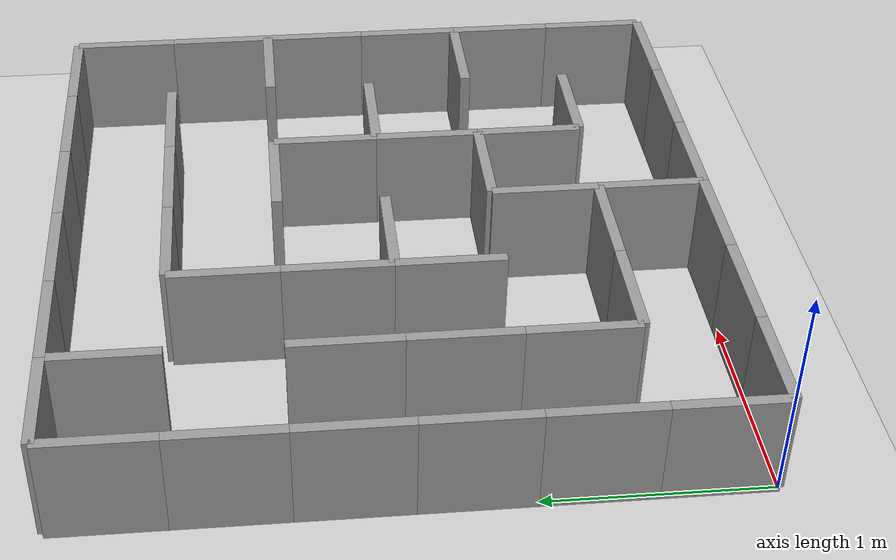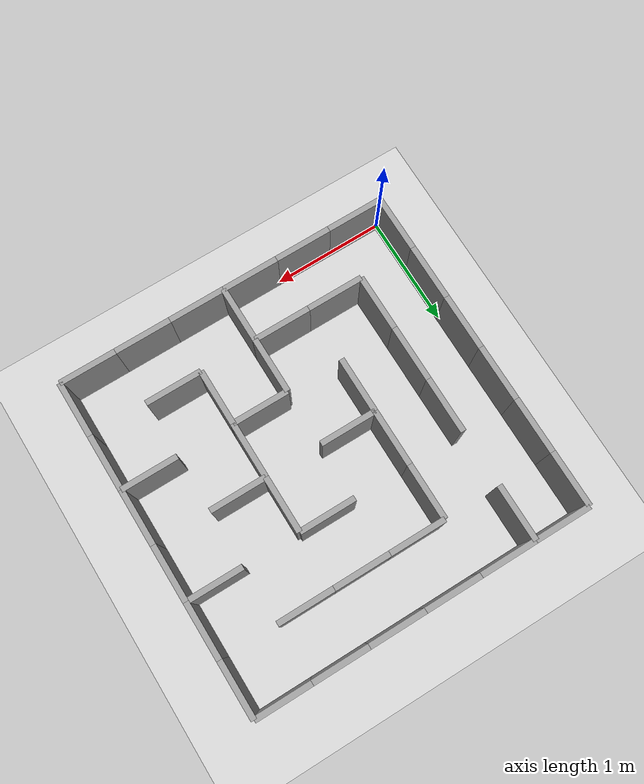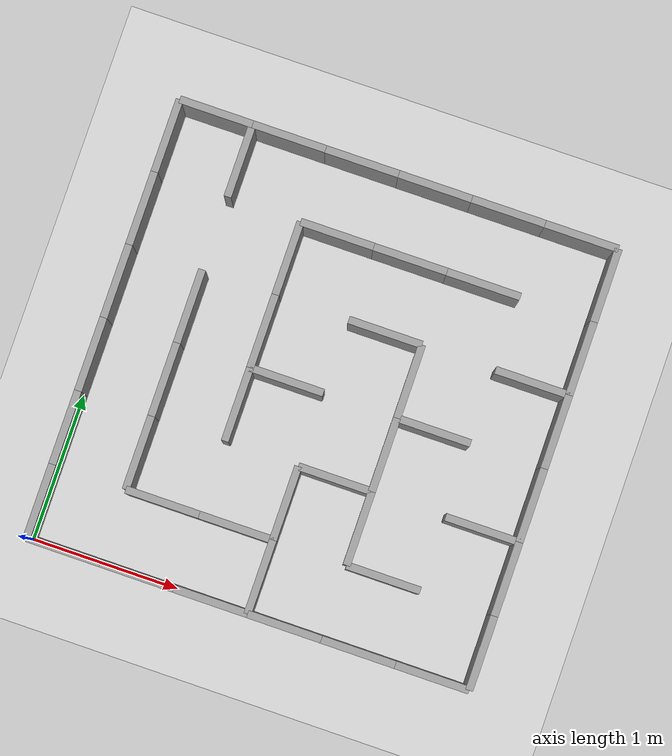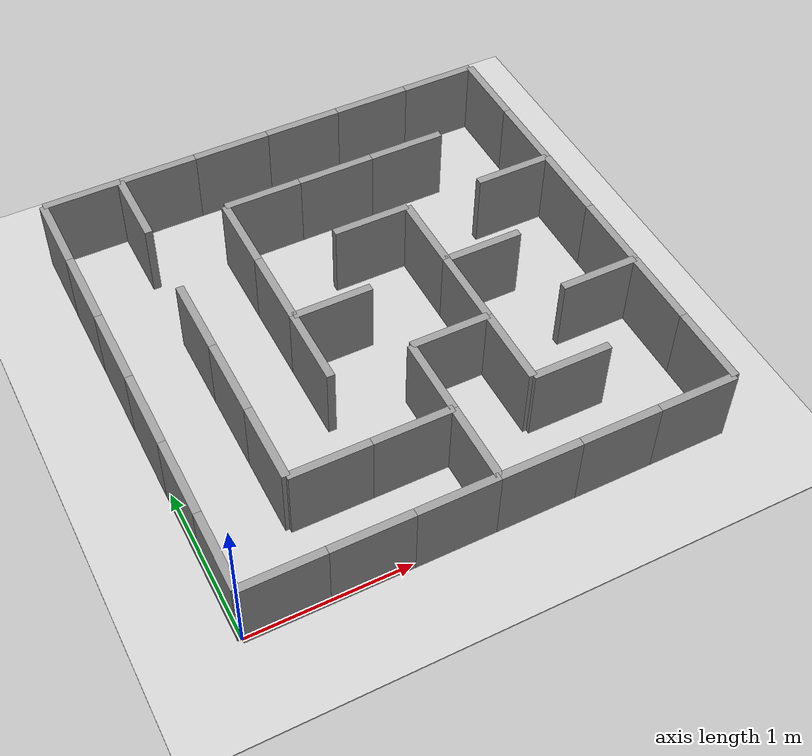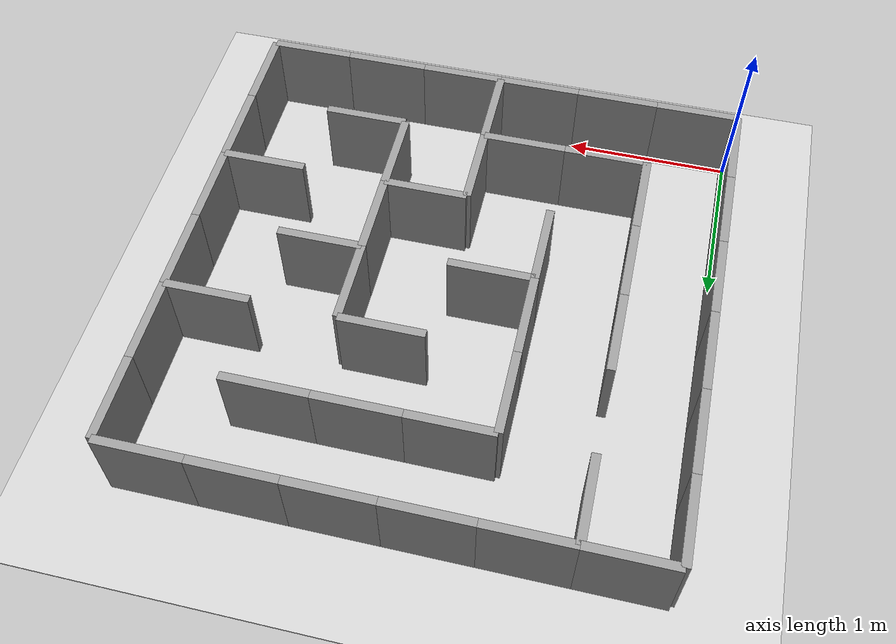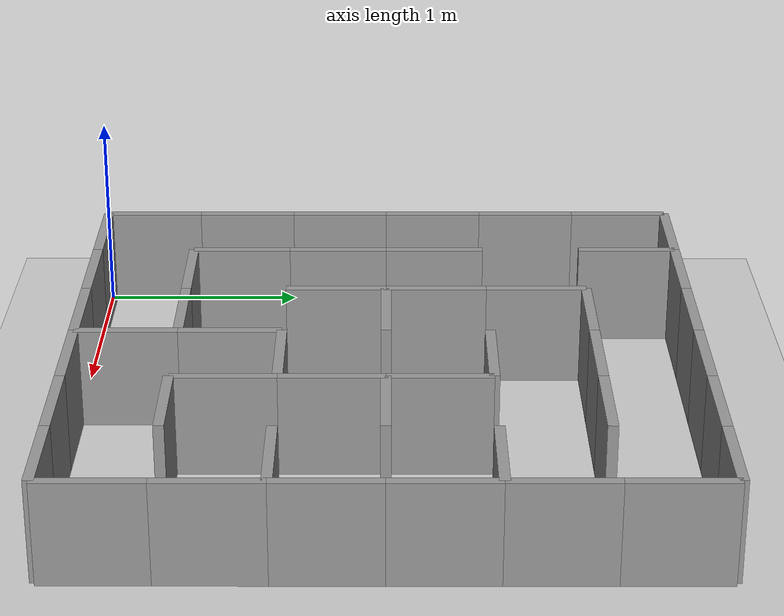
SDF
<?xml version="1.0" ?>
<sdf version="1.7">
  <world name="maze_world">

    <physics type="ode">
      <real_time_update_rate>1000.0</real_time_update_rate>
      <max_step_size>0.001</max_step_size>
      <real_time_factor>1</real_time_factor>
      <ode>
        <solver>
          <type>quick</type>
          <iters>150</iters>
          <precon_iters>0</precon_iters>
          <sor>1.400000</sor>
          <use_dynamic_moi_rescaling>1</use_dynamic_moi_rescaling>
        </solver>
        <constraints>
          <cfm>0.00001</cfm>
          <erp>0.2</erp>
          <contact_max_correcting_vel>2000.000000</contact_max_correcting_vel>
          <contact_surface_layer>0.01000</contact_surface_layer>
        </constraints>
      </ode>
    </physics>

    <!-- core Gazebo plugins (keep as in official world) -->
    <plugin filename="gz-sim-physics-system" name="gz::sim::systems::Physics" />
    <plugin filename="gz-sim-user-commands-system" name="gz::sim::systems::UserCommands" />
    <plugin filename="gz-sim-scene-broadcaster-system" name="gz::sim::systems::SceneBroadcaster" />
    <plugin filename="gz-sim-sensors-system" name="gz::sim::systems::Sensors">
      <render_engine>ogre2</render_engine>
    </plugin>
    <plugin filename="gz-sim-imu-system" name="gz::sim::systems::Imu" />

    <!-- Embedded ground: large thin static box whose top surface is at z=0 -->
    <model name="ground_plane_custom">
      <static>true</static>
      <link name="ground_link">
        <pose>0 0 0 0 0 0</pose>
        <collision name="ground_collision">
          <geometry>
            <!-- big plane approximated by a thin box (100m x 100m x 0.01m) -->
            <box>
              <size>100.0 100.0 0.01</size>
            </box>
          </geometry>
        </collision>
        <visual name="ground_visual">
          <geometry>
            <box>
              <size>100.0 100.0 0.01</size>
            </box>
          </geometry>
          <material>
            <ambient>0.8 0.8 0.8 1</ambient>
            <diffuse>0.8 0.8 0.8 1</diffuse>
          </material>
        </visual>
      </link>
      <!-- put the thin box so its top is at z=0 (box thickness 0.01 -> center at -0.005) -->
      <pose>0 0 -0.005 0 0 0</pose>
    </model>

    <!-- Embedded directional light (sun) -->
    <light name="sun" type="directional">
      <cast_shadows>true</cast_shadows>
      <pose>0 0 10 0 0 0</pose>
      <direction>-0.5 0.5 -1</direction>
      <diffuse>1 1 1 1</diffuse>
      <specular>0.2 0.2 0.2 1</specular>
      <attenuation>
        <range>1000</range>
        <constant>0.0</constant>
        <linear>0.0</linear>
        <quadratic>0.0</quadratic>
      </attenuation>
    </light>

<model name="wall_v_r0_c0">
  <static>true</static>
  <link name="link">
    <pose>0 0 0 0 0 0</pose>
    <collision name="collision">
      <geometry>
        <box>
          <size>0.050100 0.500100 0.500000</size>
        </box>
      </geometry>
    </collision>
    <visual name="visual">
      <geometry>
        <box>
          <size>0.050100 0.500100 0.500000</size>
        </box>
      </geometry>
      <material>
        <ambient>0.6 0.6 0.6 1</ambient>
        <diffuse>0.6 0.6 0.6 1</diffuse>
      </material>
    </visual>
  </link>
  <!-- model pose sets box center; half_z ensures bottom rests on z=0 -->
  <pose>0.000000 0.250000 0.250000 0 0 0</pose>
</model>

<model name="wall_v_r0_c3">
  <static>true</static>
  <link name="link">
    <pose>0 0 0 0 0 0</pose>
    <collision name="collision">
      <geometry>
        <box>
          <size>0.050100 0.500100 0.500000</size>
        </box>
      </geometry>
    </collision>
    <visual name="visual">
      <geometry>
        <box>
          <size>0.050100 0.500100 0.500000</size>
        </box>
      </geometry>
      <material>
        <ambient>0.6 0.6 0.6 1</ambient>
        <diffuse>0.6 0.6 0.6 1</diffuse>
      </material>
    </visual>
  </link>
  <!-- model pose sets box center; half_z ensures bottom rests on z=0 -->
  <pose>1.500000 0.250000 0.250000 0 0 0</pose>
</model>

<model name="wall_v_r0_c6">
  <static>true</static>
  <link name="link">
    <pose>0 0 0 0 0 0</pose>
    <collision name="collision">
      <geometry>
        <box>
          <size>0.050100 0.500100 0.500000</size>
        </box>
      </geometry>
    </collision>
    <visual name="visual">
      <geometry>
        <box>
          <size>0.050100 0.500100 0.500000</size>
        </box>
      </geometry>
      <material>
        <ambient>0.6 0.6 0.6 1</ambient>
        <diffuse>0.6 0.6 0.6 1</diffuse>
      </material>
    </visual>
  </link>
  <!-- model pose sets box center; half_z ensures bottom rests on z=0 -->
  <pose>3.000000 0.250000 0.250000 0 0 0</pose>
</model>

<model name="wall_v_r1_c0">
  <static>true</static>
  <link name="link">
    <pose>0 0 0 0 0 0</pose>
    <collision name="collision">
      <geometry>
        <box>
          <size>0.050100 0.500100 0.500000</size>
        </box>
      </geometry>
    </collision>
    <visual name="visual">
      <geometry>
        <box>
          <size>0.050100 0.500100 0.500000</size>
        </box>
      </geometry>
      <material>
        <ambient>0.6 0.6 0.6 1</ambient>
        <diffuse>0.6 0.6 0.6 1</diffuse>
      </material>
    </visual>
  </link>
  <!-- model pose sets box center; half_z ensures bottom rests on z=0 -->
  <pose>0.000000 0.750000 0.250000 0 0 0</pose>
</model>

<model name="wall_v_r1_c1">
  <static>true</static>
  <link name="link">
    <pose>0 0 0 0 0 0</pose>
    <collision name="collision">
      <geometry>
        <box>
          <size>0.050100 0.500100 0.500000</size>
        </box>
      </geometry>
    </collision>
    <visual name="visual">
      <geometry>
        <box>
          <size>0.050100 0.500100 0.500000</size>
        </box>
      </geometry>
      <material>
        <ambient>0.6 0.6 0.6 1</ambient>
        <diffuse>0.6 0.6 0.6 1</diffuse>
      </material>
    </visual>
  </link>
  <!-- model pose sets box center; half_z ensures bottom rests on z=0 -->
  <pose>0.500000 0.750000 0.250000 0 0 0</pose>
</model>

<model name="wall_v_r1_c3">
  <static>true</static>
  <link name="link">
    <pose>0 0 0 0 0 0</pose>
    <collision name="collision">
      <geometry>
        <box>
          <size>0.050100 0.500100 0.500000</size>
        </box>
      </geometry>
    </collision>
    <visual name="visual">
      <geometry>
        <box>
          <size>0.050100 0.500100 0.500000</size>
        </box>
      </geometry>
      <material>
        <ambient>0.6 0.6 0.6 1</ambient>
        <diffuse>0.6 0.6 0.6 1</diffuse>
      </material>
    </visual>
  </link>
  <!-- model pose sets box center; half_z ensures bottom rests on z=0 -->
  <pose>1.500000 0.750000 0.250000 0 0 0</pose>
</model>

<model name="wall_v_r1_c4">
  <static>true</static>
  <link name="link">
    <pose>0 0 0 0 0 0</pose>
    <collision name="collision">
      <geometry>
        <box>
          <size>0.050100 0.500100 0.500000</size>
        </box>
      </geometry>
    </collision>
    <visual name="visual">
      <geometry>
        <box>
          <size>0.050100 0.500100 0.500000</size>
        </box>
      </geometry>
      <material>
        <ambient>0.6 0.6 0.6 1</ambient>
        <diffuse>0.6 0.6 0.6 1</diffuse>
      </material>
    </visual>
  </link>
  <!-- model pose sets box center; half_z ensures bottom rests on z=0 -->
  <pose>2.000000 0.750000 0.250000 0 0 0</pose>
</model>

<model name="wall_v_r1_c6">
  <static>true</static>
  <link name="link">
    <pose>0 0 0 0 0 0</pose>
    <collision name="collision">
      <geometry>
        <box>
          <size>0.050100 0.500100 0.500000</size>
        </box>
      </geometry>
    </collision>
    <visual name="visual">
      <geometry>
        <box>
          <size>0.050100 0.500100 0.500000</size>
        </box>
      </geometry>
      <material>
        <ambient>0.6 0.6 0.6 1</ambient>
        <diffuse>0.6 0.6 0.6 1</diffuse>
      </material>
    </visual>
  </link>
  <!-- model pose sets box center; half_z ensures bottom rests on z=0 -->
  <pose>3.000000 0.750000 0.250000 0 0 0</pose>
</model>

<model name="wall_v_r2_c0">
  <static>true</static>
  <link name="link">
    <pose>0 0 0 0 0 0</pose>
    <collision name="collision">
      <geometry>
        <box>
          <size>0.050100 0.500100 0.500000</size>
        </box>
      </geometry>
    </collision>
    <visual name="visual">
      <geometry>
        <box>
          <size>0.050100 0.500100 0.500000</size>
        </box>
      </geometry>
      <material>
        <ambient>0.6 0.6 0.6 1</ambient>
        <diffuse>0.6 0.6 0.6 1</diffuse>
      </material>
    </visual>
  </link>
  <!-- model pose sets box center; half_z ensures bottom rests on z=0 -->
  <pose>0.000000 1.250000 0.250000 0 0 0</pose>
</model>

<model name="wall_v_r2_c1">
  <static>true</static>
  <link name="link">
    <pose>0 0 0 0 0 0</pose>
    <collision name="collision">
      <geometry>
        <box>
          <size>0.050100 0.500100 0.500000</size>
        </box>
      </geometry>
    </collision>
    <visual name="visual">
      <geometry>
        <box>
          <size>0.050100 0.500100 0.500000</size>
        </box>
      </geometry>
      <material>
        <ambient>0.6 0.6 0.6 1</ambient>
        <diffuse>0.6 0.6 0.6 1</diffuse>
      </material>
    </visual>
  </link>
  <!-- model pose sets box center; half_z ensures bottom rests on z=0 -->
  <pose>0.500000 1.250000 0.250000 0 0 0</pose>
</model>

<model name="wall_v_r2_c2">
  <static>true</static>
  <link name="link">
    <pose>0 0 0 0 0 0</pose>
    <collision name="collision">
      <geometry>
        <box>
          <size>0.050100 0.500100 0.500000</size>
        </box>
      </geometry>
    </collision>
    <visual name="visual">
      <geometry>
        <box>
          <size>0.050100 0.500100 0.500000</size>
        </box>
      </geometry>
      <material>
        <ambient>0.6 0.6 0.6 1</ambient>
        <diffuse>0.6 0.6 0.6 1</diffuse>
      </material>
    </visual>
  </link>
  <!-- model pose sets box center; half_z ensures bottom rests on z=0 -->
  <pose>1.000000 1.250000 0.250000 0 0 0</pose>
</model>

<model name="wall_v_r2_c4">
  <static>true</static>
  <link name="link">
    <pose>0 0 0 0 0 0</pose>
    <collision name="collision">
      <geometry>
        <box>
          <size>0.050100 0.500100 0.500000</size>
        </box>
      </geometry>
    </collision>
    <visual name="visual">
      <geometry>
        <box>
          <size>0.050100 0.500100 0.500000</size>
        </box>
      </geometry>
      <material>
        <ambient>0.6 0.6 0.6 1</ambient>
        <diffuse>0.6 0.6 0.6 1</diffuse>
      </material>
    </visual>
  </link>
  <!-- model pose sets box center; half_z ensures bottom rests on z=0 -->
  <pose>2.000000 1.250000 0.250000 0 0 0</pose>
</model>

<model name="wall_v_r2_c6">
  <static>true</static>
  <link name="link">
    <pose>0 0 0 0 0 0</pose>
    <collision name="collision">
      <geometry>
        <box>
          <size>0.050100 0.500100 0.500000</size>
        </box>
      </geometry>
    </collision>
    <visual name="visual">
      <geometry>
        <box>
          <size>0.050100 0.500100 0.500000</size>
        </box>
      </geometry>
      <material>
        <ambient>0.6 0.6 0.6 1</ambient>
        <diffuse>0.6 0.6 0.6 1</diffuse>
      </material>
    </visual>
  </link>
  <!-- model pose sets box center; half_z ensures bottom rests on z=0 -->
  <pose>3.000000 1.250000 0.250000 0 0 0</pose>
</model>

<model name="wall_v_r3_c0">
  <static>true</static>
  <link name="link">
    <pose>0 0 0 0 0 0</pose>
    <collision name="collision">
      <geometry>
        <box>
          <size>0.050100 0.500100 0.500000</size>
        </box>
      </geometry>
    </collision>
    <visual name="visual">
      <geometry>
        <box>
          <size>0.050100 0.500100 0.500000</size>
        </box>
      </geometry>
      <material>
        <ambient>0.6 0.6 0.6 1</ambient>
        <diffuse>0.6 0.6 0.6 1</diffuse>
      </material>
    </visual>
  </link>
  <!-- model pose sets box center; half_z ensures bottom rests on z=0 -->
  <pose>0.000000 1.750000 0.250000 0 0 0</pose>
</model>

<model name="wall_v_r3_c1">
  <static>true</static>
  <link name="link">
    <pose>0 0 0 0 0 0</pose>
    <collision name="collision">
      <geometry>
        <box>
          <size>0.050100 0.500100 0.500000</size>
        </box>
      </geometry>
    </collision>
    <visual name="visual">
      <geometry>
        <box>
          <size>0.050100 0.500100 0.500000</size>
        </box>
      </geometry>
      <material>
        <ambient>0.6 0.6 0.6 1</ambient>
        <diffuse>0.6 0.6 0.6 1</diffuse>
      </material>
    </visual>
  </link>
  <!-- model pose sets box center; half_z ensures bottom rests on z=0 -->
  <pose>0.500000 1.750000 0.250000 0 0 0</pose>
</model>

<model name="wall_v_r3_c2">
  <static>true</static>
  <link name="link">
    <pose>0 0 0 0 0 0</pose>
    <collision name="collision">
      <geometry>
        <box>
          <size>0.050100 0.500100 0.500000</size>
        </box>
      </geometry>
    </collision>
    <visual name="visual">
      <geometry>
        <box>
          <size>0.050100 0.500100 0.500000</size>
        </box>
      </geometry>
      <material>
        <ambient>0.6 0.6 0.6 1</ambient>
        <diffuse>0.6 0.6 0.6 1</diffuse>
      </material>
    </visual>
  </link>
  <!-- model pose sets box center; half_z ensures bottom rests on z=0 -->
  <pose>1.000000 1.750000 0.250000 0 0 0</pose>
</model>

<model name="wall_v_r3_c4">
  <static>true</static>
  <link name="link">
    <pose>0 0 0 0 0 0</pose>
    <collision name="collision">
      <geometry>
        <box>
          <size>0.050100 0.500100 0.500000</size>
        </box>
      </geometry>
    </collision>
    <visual name="visual">
      <geometry>
        <box>
          <size>0.050100 0.500100 0.500000</size>
        </box>
      </geometry>
      <material>
        <ambient>0.6 0.6 0.6 1</ambient>
        <diffuse>0.6 0.6 0.6 1</diffuse>
      </material>
    </visual>
  </link>
  <!-- model pose sets box center; half_z ensures bottom rests on z=0 -->
  <pose>2.000000 1.750000 0.250000 0 0 0</pose>
</model>

<model name="wall_v_r3_c6">
  <static>true</static>
  <link name="link">
    <pose>0 0 0 0 0 0</pose>
    <collision name="collision">
      <geometry>
        <box>
          <size>0.050100 0.500100 0.500000</size>
        </box>
      </geometry>
    </collision>
    <visual name="visual">
      <geometry>
        <box>
          <size>0.050100 0.500100 0.500000</size>
        </box>
      </geometry>
      <material>
        <ambient>0.6 0.6 0.6 1</ambient>
        <diffuse>0.6 0.6 0.6 1</diffuse>
      </material>
    </visual>
  </link>
  <!-- model pose sets box center; half_z ensures bottom rests on z=0 -->
  <pose>3.000000 1.750000 0.250000 0 0 0</pose>
</model>

<model name="wall_v_r4_c0">
  <static>true</static>
  <link name="link">
    <pose>0 0 0 0 0 0</pose>
    <collision name="collision">
      <geometry>
        <box>
          <size>0.050100 0.500100 0.500000</size>
        </box>
      </geometry>
    </collision>
    <visual name="visual">
      <geometry>
        <box>
          <size>0.050100 0.500100 0.500000</size>
        </box>
      </geometry>
      <material>
        <ambient>0.6 0.6 0.6 1</ambient>
        <diffuse>0.6 0.6 0.6 1</diffuse>
      </material>
    </visual>
  </link>
  <!-- model pose sets box center; half_z ensures bottom rests on z=0 -->
  <pose>0.000000 2.250000 0.250000 0 0 0</pose>
</model>

<model name="wall_v_r4_c2">
  <static>true</static>
  <link name="link">
    <pose>0 0 0 0 0 0</pose>
    <collision name="collision">
      <geometry>
        <box>
          <size>0.050100 0.500100 0.500000</size>
        </box>
      </geometry>
    </collision>
    <visual name="visual">
      <geometry>
        <box>
          <size>0.050100 0.500100 0.500000</size>
        </box>
      </geometry>
      <material>
        <ambient>0.6 0.6 0.6 1</ambient>
        <diffuse>0.6 0.6 0.6 1</diffuse>
      </material>
    </visual>
  </link>
  <!-- model pose sets box center; half_z ensures bottom rests on z=0 -->
  <pose>1.000000 2.250000 0.250000 0 0 0</pose>
</model>

<model name="wall_v_r4_c6">
  <static>true</static>
  <link name="link">
    <pose>0 0 0 0 0 0</pose>
    <collision name="collision">
      <geometry>
        <box>
          <size>0.050100 0.500100 0.500000</size>
        </box>
      </geometry>
    </collision>
    <visual name="visual">
      <geometry>
        <box>
          <size>0.050100 0.500100 0.500000</size>
        </box>
      </geometry>
      <material>
        <ambient>0.6 0.6 0.6 1</ambient>
        <diffuse>0.6 0.6 0.6 1</diffuse>
      </material>
    </visual>
  </link>
  <!-- model pose sets box center; half_z ensures bottom rests on z=0 -->
  <pose>3.000000 2.250000 0.250000 0 0 0</pose>
</model>

<model name="wall_v_r5_c0">
  <static>true</static>
  <link name="link">
    <pose>0 0 0 0 0 0</pose>
    <collision name="collision">
      <geometry>
        <box>
          <size>0.050100 0.500100 0.500000</size>
        </box>
      </geometry>
    </collision>
    <visual name="visual">
      <geometry>
        <box>
          <size>0.050100 0.500100 0.500000</size>
        </box>
      </geometry>
      <material>
        <ambient>0.6 0.6 0.6 1</ambient>
        <diffuse>0.6 0.6 0.6 1</diffuse>
      </material>
    </visual>
  </link>
  <!-- model pose sets box center; half_z ensures bottom rests on z=0 -->
  <pose>0.000000 2.750000 0.250000 0 0 0</pose>
</model>

<model name="wall_v_r5_c1">
  <static>true</static>
  <link name="link">
    <pose>0 0 0 0 0 0</pose>
    <collision name="collision">
      <geometry>
        <box>
          <size>0.050100 0.500100 0.500000</size>
        </box>
      </geometry>
    </collision>
    <visual name="visual">
      <geometry>
        <box>
          <size>0.050100 0.500100 0.500000</size>
        </box>
      </geometry>
      <material>
        <ambient>0.6 0.6 0.6 1</ambient>
        <diffuse>0.6 0.6 0.6 1</diffuse>
      </material>
    </visual>
  </link>
  <!-- model pose sets box center; half_z ensures bottom rests on z=0 -->
  <pose>0.500000 2.750000 0.250000 0 0 0</pose>
</model>

<model name="wall_v_r5_c6">
  <static>true</static>
  <link name="link">
    <pose>0 0 0 0 0 0</pose>
    <collision name="collision">
      <geometry>
        <box>
          <size>0.050100 0.500100 0.500000</size>
        </box>
      </geometry>
    </collision>
    <visual name="visual">
      <geometry>
        <box>
          <size>0.050100 0.500100 0.500000</size>
        </box>
      </geometry>
      <material>
        <ambient>0.6 0.6 0.6 1</ambient>
        <diffuse>0.6 0.6 0.6 1</diffuse>
      </material>
    </visual>
  </link>
  <!-- model pose sets box center; half_z ensures bottom rests on z=0 -->
  <pose>3.000000 2.750000 0.250000 0 0 0</pose>
</model>

<model name="wall_h_r0_c0">
  <static>true</static>
  <link name="link">
    <pose>0 0 0 0 0 0</pose>
    <collision name="collision">
      <geometry>
        <box>
          <size>0.500100 0.050100 0.500000</size>
        </box>
      </geometry>
    </collision>
    <visual name="visual">
      <geometry>
        <box>
          <size>0.500100 0.050100 0.500000</size>
        </box>
      </geometry>
      <material>
        <ambient>0.6 0.6 0.6 1</ambient>
        <diffuse>0.6 0.6 0.6 1</diffuse>
      </material>
    </visual>
  </link>
  <!-- model pose sets box center; half_z ensures bottom rests on z=0 -->
  <pose>0.250000 0.000000 0.250000 0 0 0</pose>
</model>

<model name="wall_h_r0_c1">
  <static>true</static>
  <link name="link">
    <pose>0 0 0 0 0 0</pose>
    <collision name="collision">
      <geometry>
        <box>
          <size>0.500100 0.050100 0.500000</size>
        </box>
      </geometry>
    </collision>
    <visual name="visual">
      <geometry>
        <box>
          <size>0.500100 0.050100 0.500000</size>
        </box>
      </geometry>
      <material>
        <ambient>0.6 0.6 0.6 1</ambient>
        <diffuse>0.6 0.6 0.6 1</diffuse>
      </material>
    </visual>
  </link>
  <!-- model pose sets box center; half_z ensures bottom rests on z=0 -->
  <pose>0.750000 0.000000 0.250000 0 0 0</pose>
</model>

<model name="wall_h_r0_c2">
  <static>true</static>
  <link name="link">
    <pose>0 0 0 0 0 0</pose>
    <collision name="collision">
      <geometry>
        <box>
          <size>0.500100 0.050100 0.500000</size>
        </box>
      </geometry>
    </collision>
    <visual name="visual">
      <geometry>
        <box>
          <size>0.500100 0.050100 0.500000</size>
        </box>
      </geometry>
      <material>
        <ambient>0.6 0.6 0.6 1</ambient>
        <diffuse>0.6 0.6 0.6 1</diffuse>
      </material>
    </visual>
  </link>
  <!-- model pose sets box center; half_z ensures bottom rests on z=0 -->
  <pose>1.250000 0.000000 0.250000 0 0 0</pose>
</model>

<model name="wall_h_r0_c3">
  <static>true</static>
  <link name="link">
    <pose>0 0 0 0 0 0</pose>
    <collision name="collision">
      <geometry>
        <box>
          <size>0.500100 0.050100 0.500000</size>
        </box>
      </geometry>
    </collision>
    <visual name="visual">
      <geometry>
        <box>
          <size>0.500100 0.050100 0.500000</size>
        </box>
      </geometry>
      <material>
        <ambient>0.6 0.6 0.6 1</ambient>
        <diffuse>0.6 0.6 0.6 1</diffuse>
      </material>
    </visual>
  </link>
  <!-- model pose sets box center; half_z ensures bottom rests on z=0 -->
  <pose>1.750000 0.000000 0.250000 0 0 0</pose>
</model>

<model name="wall_h_r0_c4">
  <static>true</static>
  <link name="link">
    <pose>0 0 0 0 0 0</pose>
    <collision name="collision">
      <geometry>
        <box>
          <size>0.500100 0.050100 0.500000</size>
        </box>
      </geometry>
    </collision>
    <visual name="visual">
      <geometry>
        <box>
          <size>0.500100 0.050100 0.500000</size>
        </box>
      </geometry>
      <material>
        <ambient>0.6 0.6 0.6 1</ambient>
        <diffuse>0.6 0.6 0.6 1</diffuse>
      </material>
    </visual>
  </link>
  <!-- model pose sets box center; half_z ensures bottom rests on z=0 -->
  <pose>2.250000 0.000000 0.250000 0 0 0</pose>
</model>

<model name="wall_h_r0_c5">
  <static>true</static>
  <link name="link">
    <pose>0 0 0 0 0 0</pose>
    <collision name="collision">
      <geometry>
        <box>
          <size>0.500100 0.050100 0.500000</size>
        </box>
      </geometry>
    </collision>
    <visual name="visual">
      <geometry>
        <box>
          <size>0.500100 0.050100 0.500000</size>
        </box>
      </geometry>
      <material>
        <ambient>0.6 0.6 0.6 1</ambient>
        <diffuse>0.6 0.6 0.6 1</diffuse>
      </material>
    </visual>
  </link>
  <!-- model pose sets box center; half_z ensures bottom rests on z=0 -->
  <pose>2.750000 0.000000 0.250000 0 0 0</pose>
</model>

<model name="wall_h_r1_c1">
  <static>true</static>
  <link name="link">
    <pose>0 0 0 0 0 0</pose>
    <collision name="collision">
      <geometry>
        <box>
          <size>0.500100 0.050100 0.500000</size>
        </box>
      </geometry>
    </collision>
    <visual name="visual">
      <geometry>
        <box>
          <size>0.500100 0.050100 0.500000</size>
        </box>
      </geometry>
      <material>
        <ambient>0.6 0.6 0.6 1</ambient>
        <diffuse>0.6 0.6 0.6 1</diffuse>
      </material>
    </visual>
  </link>
  <!-- model pose sets box center; half_z ensures bottom rests on z=0 -->
  <pose>0.750000 0.500000 0.250000 0 0 0</pose>
</model>

<model name="wall_h_r1_c2">
  <static>true</static>
  <link name="link">
    <pose>0 0 0 0 0 0</pose>
    <collision name="collision">
      <geometry>
        <box>
          <size>0.500100 0.050100 0.500000</size>
        </box>
      </geometry>
    </collision>
    <visual name="visual">
      <geometry>
        <box>
          <size>0.500100 0.050100 0.500000</size>
        </box>
      </geometry>
      <material>
        <ambient>0.6 0.6 0.6 1</ambient>
        <diffuse>0.6 0.6 0.6 1</diffuse>
      </material>
    </visual>
  </link>
  <!-- model pose sets box center; half_z ensures bottom rests on z=0 -->
  <pose>1.250000 0.500000 0.250000 0 0 0</pose>
</model>

<model name="wall_h_r1_c4">
  <static>true</static>
  <link name="link">
    <pose>0 0 0 0 0 0</pose>
    <collision name="collision">
      <geometry>
        <box>
          <size>0.500100 0.050100 0.500000</size>
        </box>
      </geometry>
    </collision>
    <visual name="visual">
      <geometry>
        <box>
          <size>0.500100 0.050100 0.500000</size>
        </box>
      </geometry>
      <material>
        <ambient>0.6 0.6 0.6 1</ambient>
        <diffuse>0.6 0.6 0.6 1</diffuse>
      </material>
    </visual>
  </link>
  <!-- model pose sets box center; half_z ensures bottom rests on z=0 -->
  <pose>2.250000 0.500000 0.250000 0 0 0</pose>
</model>

<model name="wall_h_r2_c3">
  <static>true</static>
  <link name="link">
    <pose>0 0 0 0 0 0</pose>
    <collision name="collision">
      <geometry>
        <box>
          <size>0.500100 0.050100 0.500000</size>
        </box>
      </geometry>
    </collision>
    <visual name="visual">
      <geometry>
        <box>
          <size>0.500100 0.050100 0.500000</size>
        </box>
      </geometry>
      <material>
        <ambient>0.6 0.6 0.6 1</ambient>
        <diffuse>0.6 0.6 0.6 1</diffuse>
      </material>
    </visual>
  </link>
  <!-- model pose sets box center; half_z ensures bottom rests on z=0 -->
  <pose>1.750000 1.000000 0.250000 0 0 0</pose>
</model>

<model name="wall_h_r2_c5">
  <static>true</static>
  <link name="link">
    <pose>0 0 0 0 0 0</pose>
    <collision name="collision">
      <geometry>
        <box>
          <size>0.500100 0.050100 0.500000</size>
        </box>
      </geometry>
    </collision>
    <visual name="visual">
      <geometry>
        <box>
          <size>0.500100 0.050100 0.500000</size>
        </box>
      </geometry>
      <material>
        <ambient>0.6 0.6 0.6 1</ambient>
        <diffuse>0.6 0.6 0.6 1</diffuse>
      </material>
    </visual>
  </link>
  <!-- model pose sets box center; half_z ensures bottom rests on z=0 -->
  <pose>2.750000 1.000000 0.250000 0 0 0</pose>
</model>

<model name="wall_h_r3_c2">
  <static>true</static>
  <link name="link">
    <pose>0 0 0 0 0 0</pose>
    <collision name="collision">
      <geometry>
        <box>
          <size>0.500100 0.050100 0.500000</size>
        </box>
      </geometry>
    </collision>
    <visual name="visual">
      <geometry>
        <box>
          <size>0.500100 0.050100 0.500000</size>
        </box>
      </geometry>
      <material>
        <ambient>0.6 0.6 0.6 1</ambient>
        <diffuse>0.6 0.6 0.6 1</diffuse>
      </material>
    </visual>
  </link>
  <!-- model pose sets box center; half_z ensures bottom rests on z=0 -->
  <pose>1.250000 1.500000 0.250000 0 0 0</pose>
</model>

<model name="wall_h_r3_c4">
  <static>true</static>
  <link name="link">
    <pose>0 0 0 0 0 0</pose>
    <collision name="collision">
      <geometry>
        <box>
          <size>0.500100 0.050100 0.500000</size>
        </box>
      </geometry>
    </collision>
    <visual name="visual">
      <geometry>
        <box>
          <size>0.500100 0.050100 0.500000</size>
        </box>
      </geometry>
      <material>
        <ambient>0.6 0.6 0.6 1</ambient>
        <diffuse>0.6 0.6 0.6 1</diffuse>
      </material>
    </visual>
  </link>
  <!-- model pose sets box center; half_z ensures bottom rests on z=0 -->
  <pose>2.250000 1.500000 0.250000 0 0 0</pose>
</model>

<model name="wall_h_r4_c3">
  <static>true</static>
  <link name="link">
    <pose>0 0 0 0 0 0</pose>
    <collision name="collision">
      <geometry>
        <box>
          <size>0.500100 0.050100 0.500000</size>
        </box>
      </geometry>
    </collision>
    <visual name="visual">
      <geometry>
        <box>
          <size>0.500100 0.050100 0.500000</size>
        </box>
      </geometry>
      <material>
        <ambient>0.6 0.6 0.6 1</ambient>
        <diffuse>0.6 0.6 0.6 1</diffuse>
      </material>
    </visual>
  </link>
  <!-- model pose sets box center; half_z ensures bottom rests on z=0 -->
  <pose>1.750000 2.000000 0.250000 0 0 0</pose>
</model>

<model name="wall_h_r4_c5">
  <static>true</static>
  <link name="link">
    <pose>0 0 0 0 0 0</pose>
    <collision name="collision">
      <geometry>
        <box>
          <size>0.500100 0.050100 0.500000</size>
        </box>
      </geometry>
    </collision>
    <visual name="visual">
      <geometry>
        <box>
          <size>0.500100 0.050100 0.500000</size>
        </box>
      </geometry>
      <material>
        <ambient>0.6 0.6 0.6 1</ambient>
        <diffuse>0.6 0.6 0.6 1</diffuse>
      </material>
    </visual>
  </link>
  <!-- model pose sets box center; half_z ensures bottom rests on z=0 -->
  <pose>2.750000 2.000000 0.250000 0 0 0</pose>
</model>

<model name="wall_h_r5_c2">
  <static>true</static>
  <link name="link">
    <pose>0 0 0 0 0 0</pose>
    <collision name="collision">
      <geometry>
        <box>
          <size>0.500100 0.050100 0.500000</size>
        </box>
      </geometry>
    </collision>
    <visual name="visual">
      <geometry>
        <box>
          <size>0.500100 0.050100 0.500000</size>
        </box>
      </geometry>
      <material>
        <ambient>0.6 0.6 0.6 1</ambient>
        <diffuse>0.6 0.6 0.6 1</diffuse>
      </material>
    </visual>
  </link>
  <!-- model pose sets box center; half_z ensures bottom rests on z=0 -->
  <pose>1.250000 2.500000 0.250000 0 0 0</pose>
</model>

<model name="wall_h_r5_c3">
  <static>true</static>
  <link name="link">
    <pose>0 0 0 0 0 0</pose>
    <collision name="collision">
      <geometry>
        <box>
          <size>0.500100 0.050100 0.500000</size>
        </box>
      </geometry>
    </collision>
    <visual name="visual">
      <geometry>
        <box>
          <size>0.500100 0.050100 0.500000</size>
        </box>
      </geometry>
      <material>
        <ambient>0.6 0.6 0.6 1</ambient>
        <diffuse>0.6 0.6 0.6 1</diffuse>
      </material>
    </visual>
  </link>
  <!-- model pose sets box center; half_z ensures bottom rests on z=0 -->
  <pose>1.750000 2.500000 0.250000 0 0 0</pose>
</model>

<model name="wall_h_r5_c4">
  <static>true</static>
  <link name="link">
    <pose>0 0 0 0 0 0</pose>
    <collision name="collision">
      <geometry>
        <box>
          <size>0.500100 0.050100 0.500000</size>
        </box>
      </geometry>
    </collision>
    <visual name="visual">
      <geometry>
        <box>
          <size>0.500100 0.050100 0.500000</size>
        </box>
      </geometry>
      <material>
        <ambient>0.6 0.6 0.6 1</ambient>
        <diffuse>0.6 0.6 0.6 1</diffuse>
      </material>
    </visual>
  </link>
  <!-- model pose sets box center; half_z ensures bottom rests on z=0 -->
  <pose>2.250000 2.500000 0.250000 0 0 0</pose>
</model>

<model name="wall_h_r6_c0">
  <static>true</static>
  <link name="link">
    <pose>0 0 0 0 0 0</pose>
    <collision name="collision">
      <geometry>
        <box>
          <size>0.500100 0.050100 0.500000</size>
        </box>
      </geometry>
    </collision>
    <visual name="visual">
      <geometry>
        <box>
          <size>0.500100 0.050100 0.500000</size>
        </box>
      </geometry>
      <material>
        <ambient>0.6 0.6 0.6 1</ambient>
        <diffuse>0.6 0.6 0.6 1</diffuse>
      </material>
    </visual>
  </link>
  <!-- model pose sets box center; half_z ensures bottom rests on z=0 -->
  <pose>0.250000 3.000000 0.250000 0 0 0</pose>
</model>

<model name="wall_h_r6_c1">
  <static>true</static>
  <link name="link">
    <pose>0 0 0 0 0 0</pose>
    <collision name="collision">
      <geometry>
        <box>
          <size>0.500100 0.050100 0.500000</size>
        </box>
      </geometry>
    </collision>
    <visual name="visual">
      <geometry>
        <box>
          <size>0.500100 0.050100 0.500000</size>
        </box>
      </geometry>
      <material>
        <ambient>0.6 0.6 0.6 1</ambient>
        <diffuse>0.6 0.6 0.6 1</diffuse>
      </material>
    </visual>
  </link>
  <!-- model pose sets box center; half_z ensures bottom rests on z=0 -->
  <pose>0.750000 3.000000 0.250000 0 0 0</pose>
</model>

<model name="wall_h_r6_c2">
  <static>true</static>
  <link name="link">
    <pose>0 0 0 0 0 0</pose>
    <collision name="collision">
      <geometry>
        <box>
          <size>0.500100 0.050100 0.500000</size>
        </box>
      </geometry>
    </collision>
    <visual name="visual">
      <geometry>
        <box>
          <size>0.500100 0.050100 0.500000</size>
        </box>
      </geometry>
      <material>
        <ambient>0.6 0.6 0.6 1</ambient>
        <diffuse>0.6 0.6 0.6 1</diffuse>
      </material>
    </visual>
  </link>
  <!-- model pose sets box center; half_z ensures bottom rests on z=0 -->
  <pose>1.250000 3.000000 0.250000 0 0 0</pose>
</model>

<model name="wall_h_r6_c3">
  <static>true</static>
  <link name="link">
    <pose>0 0 0 0 0 0</pose>
    <collision name="collision">
      <geometry>
        <box>
          <size>0.500100 0.050100 0.500000</size>
        </box>
      </geometry>
    </collision>
    <visual name="visual">
      <geometry>
        <box>
          <size>0.500100 0.050100 0.500000</size>
        </box>
      </geometry>
      <material>
        <ambient>0.6 0.6 0.6 1</ambient>
        <diffuse>0.6 0.6 0.6 1</diffuse>
      </material>
    </visual>
  </link>
  <!-- model pose sets box center; half_z ensures bottom rests on z=0 -->
  <pose>1.750000 3.000000 0.250000 0 0 0</pose>
</model>

<model name="wall_h_r6_c4">
  <static>true</static>
  <link name="link">
    <pose>0 0 0 0 0 0</pose>
    <collision name="collision">
      <geometry>
        <box>
          <size>0.500100 0.050100 0.500000</size>
        </box>
      </geometry>
    </collision>
    <visual name="visual">
      <geometry>
        <box>
          <size>0.500100 0.050100 0.500000</size>
        </box>
      </geometry>
      <material>
        <ambient>0.6 0.6 0.6 1</ambient>
        <diffuse>0.6 0.6 0.6 1</diffuse>
      </material>
    </visual>
  </link>
  <!-- model pose sets box center; half_z ensures bottom rests on z=0 -->
  <pose>2.250000 3.000000 0.250000 0 0 0</pose>
</model>

<model name="wall_h_r6_c5">
  <static>true</static>
  <link name="link">
    <pose>0 0 0 0 0 0</pose>
    <collision name="collision">
      <geometry>
        <box>
          <size>0.500100 0.050100 0.500000</size>
        </box>
      </geometry>
    </collision>
    <visual name="visual">
      <geometry>
        <box>
          <size>0.500100 0.050100 0.500000</size>
        </box>
      </geometry>
      <material>
        <ambient>0.6 0.6 0.6 1</ambient>
        <diffuse>0.6 0.6 0.6 1</diffuse>
      </material>
    </visual>
  </link>
  <!-- model pose sets box center; half_z ensures bottom rests on z=0 -->
  <pose>2.750000 3.000000 0.250000 0 0 0</pose>
</model>

</world>
</sdf>
